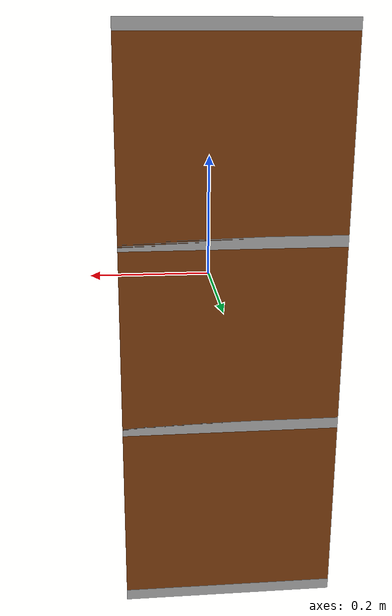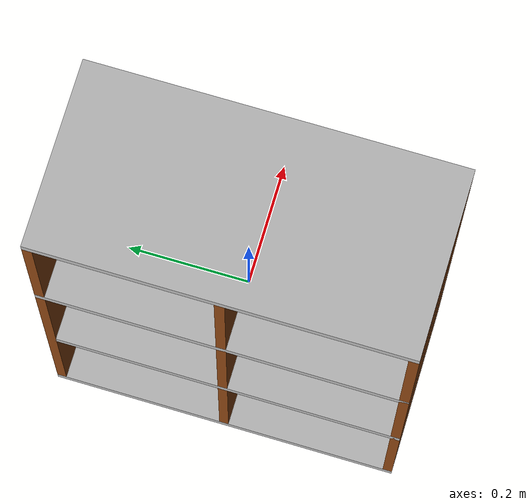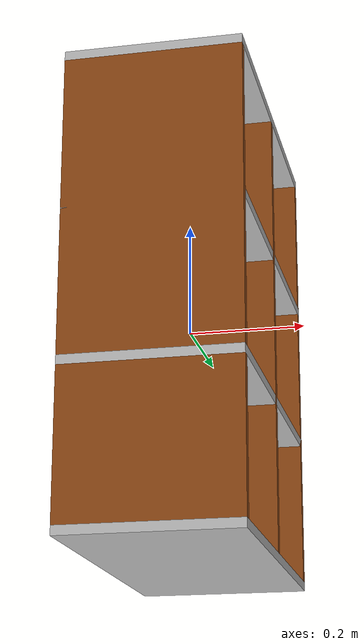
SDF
<?xml version="1.0"?>
<sdf version="1.7">
  <model name="book_shelf">
    <link name="shelves_body">
      <visual name="right_wall">
        <pose> 0 0.292 0 0 0 0</pose>
        <geometry>
          <box>
            <size>0.3 0.016 0.783</size>
          </box>
        </geometry>
        <material>
          <ambient>0.54509804, 0.27058824, 0.0745098 1</ambient> <!-- Optional: Adjust the color to your preference -->
          <diffuse>0.54509804, 0.27058824, 0.0745098 1</diffuse> <!-- This is the brown color you provided -->
          <specular>0.5 0.5 0.5 1</specular> <!-- Optional: Adjust the color to your preference -->
        </material>
      </visual>
      <visual name="middle_wall">
        <pose> 0 0.0 0 0 0 0</pose>
        <geometry>
          <box>
            <size>0.3 0.016 0.783</size>
          </box>
        </geometry>
        <material>
          <ambient>0.54509804, 0.27058824, 0.0745098 1</ambient> <!-- Optional: Adjust the color to your preference -->
          <diffuse>0.54509804, 0.27058824, 0.0745098 1</diffuse> <!-- This is the brown color you provided -->
          <specular>0.5 0.5 0.5 1</specular> <!-- Optional: Adjust the color to your preference -->
        </material>
      </visual>
      <visual name="left_wall">
        <pose> 0 -0.292 0 0 0 0</pose>
        <geometry>
          <box>
            <size>0.3 0.016 0.783</size>
          </box>
        </geometry>
        <material>
          <ambient>0.54509804, 0.27058824, 0.0745098 1</ambient> <!-- Optional: Adjust the color to your preference -->
          <diffuse>0.54509804, 0.27058824, 0.0745098 1</diffuse> <!-- This is the brown color you provided -->
          <specular>0.5 0.5 0.5 1</specular> <!-- Optional: Adjust the color to your preference -->
        </material>
      </visual>
      <collision name="right_wall">
        <pose> 0 0.292 0 0 0 0</pose>
        <geometry>
          <box>
            <size>0.3 0.016 0.783</size>
          </box>
        </geometry>
      </collision>
      <collision name="middle_wall">
        <pose> 0 0.0 0 0 0 0</pose>
        <geometry>
          <box>
            <size>0.3 0.016 0.783</size>
          </box>
        </geometry>
      </collision>
      <collision name="left_wall">
        <pose> 0 -0.292 0 0 0 0</pose>
        <geometry>
          <box>
            <size>0.3 0.016 0.783</size>
          </box>
        </geometry>
      </collision>
    </link>
    <link name="top_and_bottom">
      <visual name="bottom">
        <pose> 0 0 -0.3995 0 0 0</pose>
        <geometry>
          <box>
            <size>0.3 0.6 0.016</size>
          </box>
        </geometry>
      </visual>
      <visual name="top">
        <pose> 0 0 0.3995 0 0 0</pose>
        <geometry>
          <box>
            <size>0.3 0.6 0.016</size>
          </box>
        </geometry>
      </visual>
      <visual name="shelf_lower">
        <pose> 0 0 -0.13115 0 0 0</pose>
        <geometry>
          <box>
            <size>0.3 0.6 0.016</size>
          </box>
        </geometry>
      </visual>
      <visual name="shelf_upper">
        <pose> 0 0 0.13115 0 0 0</pose>
        <geometry>
          <box>
            <size>0.3 0.6 0.016</size>
          </box>
        </geometry>
      </visual>
      <collision name="bottom">
        <pose> 0 0 -0.3995 0 0 0</pose>
        <geometry>
          <box>
            <size>0.3 0.6 0.016</size>
          </box>
        </geometry>
      </collision>
      <collision name="top">
        <pose> 0 0 0.3995 0 0 0</pose>
        <geometry>
          <box>
            <size>0.3 0.6 0.016</size>
          </box>
        </geometry>
      </collision>
      <collision name="shelf_lower">
        <pose> 0 0 -0.13115 0 0 0</pose>
        <geometry>
          <box>
            <size>0.3 0.6 0.016</size>
          </box>
        </geometry>
      </collision>
      <collision name="shelf_upper">
        <pose> 0 0 0.13115 0 0 0</pose>
        <geometry>
          <box>
            <size>0.3 0.6 0.016</size>
          </box>
        </geometry>
      </collision>
    </link>
    <joint name="top_and_bottom_shelves_body" type="fixed">
      <child>top_and_bottom</child>
      <parent>shelves_body</parent>
    </joint>
  </model>
</sdf>
